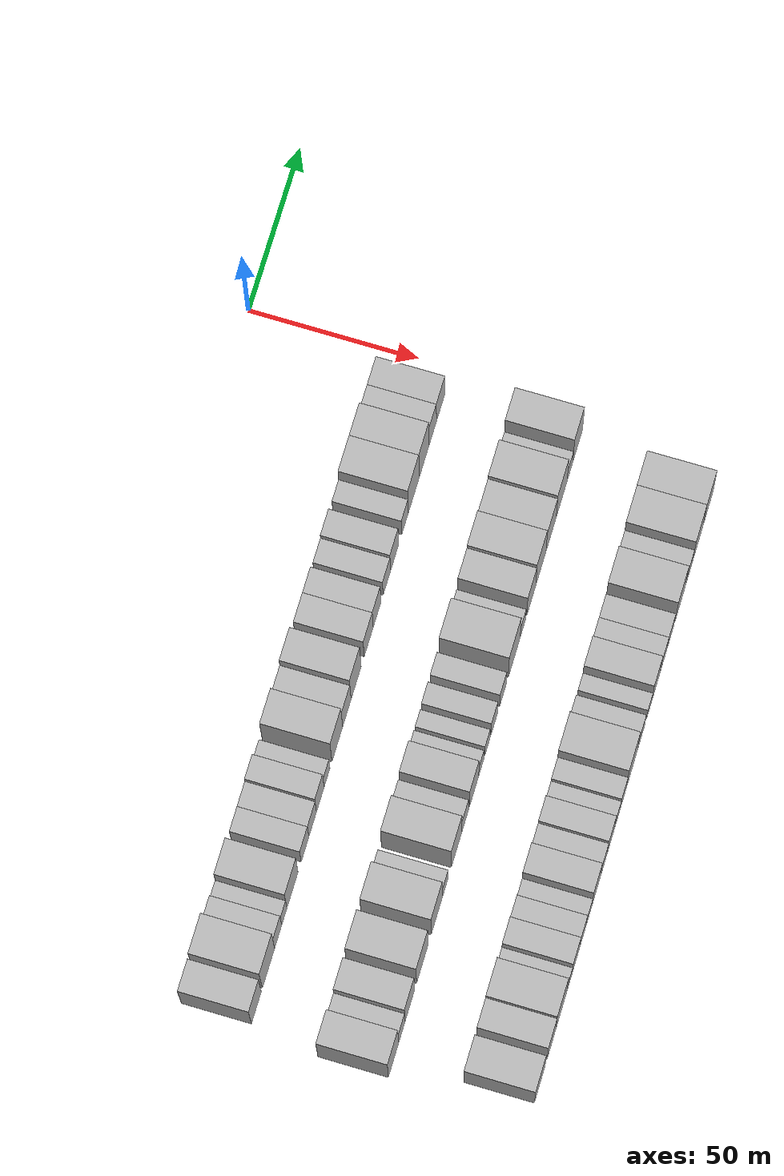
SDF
<sdf version="1.6">
 <world name="default">
  <model name="building_23">
   <static>1</static>
   <pose>50.0000 -189.3525 0 0.000000 0.000000 0.000000</pose>
   <link name="link">
    <pose>0 0 10.50 0 0 0</pose>
    <collision name="collision"><geometry><box><size>20.0000 9.1908 21.0000</size></box></geometry></collision>
    <visual name="visual">
     <cast_shadows>0</cast_shadows>
     <geometry><box><size>20.0000 9.1908 21.0000</size></box></geometry>
     <material>
      <script>
       <uri>model://HANNAS_wall/materials/scripts</uri>
       <uri>model://HANNAS_wall/materials/textures</uri>
       <name>vrc/HANNAS_wall</name>
      </script>
     </material>
    </visual>
   </link>
  </model>
  <model name="building_24">
   <static>1</static>
   <pose>50.0000 -178.0189 0 0.000000 0.000000 0.000000</pose>
   <link name="link">
    <pose>0 0 12.00 0 0 0</pose>
    <collision name="collision"><geometry><box><size>20.0000 11.4764 24.0000</size></box></geometry></collision>
    <visual name="visual">
     <cast_shadows>0</cast_shadows>
     <geometry><box><size>20.0000 11.4764 24.0000</size></box></geometry>
     <material>
      <script>
       <uri>model://HANNAS_wall/materials/scripts</uri>
       <uri>model://HANNAS_wall/materials/textures</uri>
       <name>vrc/HANNAS_wall</name>
      </script>
     </material>
    </visual>
   </link>
  </model>
  <model name="building_25">
   <static>1</static>
   <pose>50.0000 -168.9324 0 0.000000 0.000000 0.000000</pose>
   <link name="link">
    <pose>0 0 7.50 0 0 0</pose>
    <collision name="collision"><geometry><box><size>20.0000 6.6967 15.0000</size></box></geometry></collision>
    <visual name="visual">
     <cast_shadows>0</cast_shadows>
     <geometry><box><size>20.0000 6.6967 15.0000</size></box></geometry>
     <material>
      <script>
       <uri>model://HANNAS_wall/materials/scripts</uri>
       <uri>model://HANNAS_wall/materials/textures</uri>
       <name>vrc/HANNAS_wall</name>
      </script>
     </material>
    </visual>
   </link>
  </model>
  <model name="building_26">
   <static>1</static>
   <pose>50.0000 -163.1304 0 0.000000 0.000000 0.000000</pose>
   <link name="link">
    <pose>0 0 6.00 0 0 0</pose>
    <collision name="collision"><geometry><box><size>20.0000 4.9074 12.0000</size></box></geometry></collision>
    <visual name="visual">
     <cast_shadows>0</cast_shadows>
     <geometry><box><size>20.0000 4.9074 12.0000</size></box></geometry>
     <material>
      <script>
       <uri>model://HANNAS_wall/materials/scripts</uri>
       <uri>model://HANNAS_wall/materials/textures</uri>
       <name>vrc/HANNAS_wall</name>
      </script>
     </material>
    </visual>
   </link>
  </model>
  <model name="building_27">
   <static>1</static>
   <pose>50.0000 -155.4353 0 0.000000 0.000000 0.000000</pose>
   <link name="link">
    <pose>0 0 10.50 0 0 0</pose>
    <collision name="collision"><geometry><box><size>20.0000 10.4826 21.0000</size></box></geometry></collision>
    <visual name="visual">
     <cast_shadows>0</cast_shadows>
     <geometry><box><size>20.0000 10.4826 21.0000</size></box></geometry>
     <material>
      <script>
       <uri>model://HANNAS_wall/materials/scripts</uri>
       <uri>model://HANNAS_wall/materials/textures</uri>
       <name>vrc/HANNAS_wall</name>
      </script>
     </material>
    </visual>
   </link>
  </model>
  <model name="building_28">
   <static>1</static>
   <pose>50.0000 -143.5579 0 0.000000 0.000000 0.000000</pose>
   <link name="link">
    <pose>0 0 7.50 0 0 0</pose>
    <collision name="collision"><geometry><box><size>20.0000 7.2723 15.0000</size></box></geometry></collision>
    <visual name="visual">
     <cast_shadows>0</cast_shadows>
     <geometry><box><size>20.0000 7.2723 15.0000</size></box></geometry>
     <material>
      <script>
       <uri>model://HANNAS_wall/materials/scripts</uri>
       <uri>model://HANNAS_wall/materials/textures</uri>
       <name>vrc/HANNAS_wall</name>
      </script>
     </material>
    </visual>
   </link>
  </model>
  <model name="building_29">
   <static>1</static>
   <pose>50.0000 -136.2918 0 0.000000 0.000000 0.000000</pose>
   <link name="link">
    <pose>0 0 7.50 0 0 0</pose>
    <collision name="collision"><geometry><box><size>20.0000 7.2600 15.0000</size></box></geometry></collision>
    <visual name="visual">
     <cast_shadows>0</cast_shadows>
     <geometry><box><size>20.0000 7.2600 15.0000</size></box></geometry>
     <material>
      <script>
       <uri>model://HANNAS_wall/materials/scripts</uri>
       <uri>model://HANNAS_wall/materials/textures</uri>
       <name>vrc/HANNAS_wall</name>
      </script>
     </material>
    </visual>
   </link>
  </model>
  <model name="building_30">
   <static>1</static>
   <pose>50.0000 -129.0515 0 0.000000 0.000000 0.000000</pose>
   <link name="link">
    <pose>0 0 9.00 0 0 0</pose>
    <collision name="collision"><geometry><box><size>20.0000 7.2206 18.0000</size></box></geometry></collision>
    <visual name="visual">
     <cast_shadows>0</cast_shadows>
     <geometry><box><size>20.0000 7.2206 18.0000</size></box></geometry>
     <material>
      <script>
       <uri>model://HANNAS_wall/materials/scripts</uri>
       <uri>model://HANNAS_wall/materials/textures</uri>
       <name>vrc/HANNAS_wall</name>
      </script>
     </material>
    </visual>
   </link>
  </model>
  <model name="building_31">
   <static>1</static>
   <pose>50.0000 -122.6637 0 0.000000 0.000000 0.000000</pose>
   <link name="link">
    <pose>0 0 6.00 0 0 0</pose>
    <collision name="collision"><geometry><box><size>20.0000 5.5550 12.0000</size></box></geometry></collision>
    <visual name="visual">
     <cast_shadows>0</cast_shadows>
     <geometry><box><size>20.0000 5.5550 12.0000</size></box></geometry>
     <material>
      <script>
       <uri>model://HANNAS_wall/materials/scripts</uri>
       <uri>model://HANNAS_wall/materials/textures</uri>
       <name>vrc/HANNAS_wall</name>
      </script>
     </material>
    </visual>
   </link>
  </model>
  <model name="building_32">
   <static>1</static>
   <pose>50.0000 -112.7731 0 0.000000 0.000000 0.000000</pose>
   <link name="link">
    <pose>0 0 12.00 0 0 0</pose>
    <collision name="collision"><geometry><box><size>20.0000 10.2260 24.0000</size></box></geometry></collision>
    <visual name="visual">
     <cast_shadows>0</cast_shadows>
     <geometry><box><size>20.0000 10.2260 24.0000</size></box></geometry>
     <material>
      <script>
       <uri>model://HANNAS_wall/materials/scripts</uri>
       <uri>model://HANNAS_wall/materials/textures</uri>
       <name>vrc/HANNAS_wall</name>
      </script>
     </material>
    </visual>
   </link>
  </model>
  <model name="building_33">
   <static>1</static>
   <pose>50.0000 -103.6081 0 0.000000 0.000000 0.000000</pose>
   <link name="link">
    <pose>0 0 9.00 0 0 0</pose>
    <collision name="collision"><geometry><box><size>20.0000 8.1040 18.0000</size></box></geometry></collision>
    <visual name="visual">
     <cast_shadows>0</cast_shadows>
     <geometry><box><size>20.0000 8.1040 18.0000</size></box></geometry>
     <material>
      <script>
       <uri>model://HANNAS_wall/materials/scripts</uri>
       <uri>model://HANNAS_wall/materials/textures</uri>
       <name>vrc/HANNAS_wall</name>
      </script>
     </material>
    </visual>
   </link>
  </model>
  <model name="building_34">
   <static>1</static>
   <pose>50.0000 -94.7044 0 0.000000 0.000000 0.000000</pose>
   <link name="link">
    <pose>0 0 12.00 0 0 0</pose>
    <collision name="collision"><geometry><box><size>20.0000 9.7034 24.0000</size></box></geometry></collision>
    <visual name="visual">
     <cast_shadows>0</cast_shadows>
     <geometry><box><size>20.0000 9.7034 24.0000</size></box></geometry>
     <material>
      <script>
       <uri>model://HANNAS_wall/materials/scripts</uri>
       <uri>model://HANNAS_wall/materials/textures</uri>
       <name>vrc/HANNAS_wall</name>
      </script>
     </material>
    </visual>
   </link>
  </model>
  <model name="building_35">
   <static>1</static>
   <pose>50.0000 -82.5195 0 0.000000 0.000000 0.000000</pose>
   <link name="link">
    <pose>0 0 9.00 0 0 0</pose>
    <collision name="collision"><geometry><box><size>20.0000 8.6664 18.0000</size></box></geometry></collision>
    <visual name="visual">
     <cast_shadows>0</cast_shadows>
     <geometry><box><size>20.0000 8.6664 18.0000</size></box></geometry>
     <material>
      <script>
       <uri>model://HANNAS_wall/materials/scripts</uri>
       <uri>model://HANNAS_wall/materials/textures</uri>
       <name>vrc/HANNAS_wall</name>
      </script>
     </material>
    </visual>
   </link>
  </model>
  <model name="building_36">
   <static>1</static>
   <pose>50.0000 -74.3905 0 0.000000 0.000000 0.000000</pose>
   <link name="link">
    <pose>0 0 9.00 0 0 0</pose>
    <collision name="collision"><geometry><box><size>20.0000 7.5917 18.0000</size></box></geometry></collision>
    <visual name="visual">
     <cast_shadows>0</cast_shadows>
     <geometry><box><size>20.0000 7.5917 18.0000</size></box></geometry>
     <material>
      <script>
       <uri>model://HANNAS_wall/materials/scripts</uri>
       <uri>model://HANNAS_wall/materials/textures</uri>
       <name>vrc/HANNAS_wall</name>
      </script>
     </material>
    </visual>
   </link>
  </model>
  <model name="building_37">
   <static>1</static>
   <pose>50.0000 -64.9532 0 0.000000 0.000000 0.000000</pose>
   <link name="link">
    <pose>0 0 7.50 0 0 0</pose>
    <collision name="collision"><geometry><box><size>20.0000 7.2829 15.0000</size></box></geometry></collision>
    <visual name="visual">
     <cast_shadows>0</cast_shadows>
     <geometry><box><size>20.0000 7.2829 15.0000</size></box></geometry>
     <material>
      <script>
       <uri>model://HANNAS_wall/materials/scripts</uri>
       <uri>model://HANNAS_wall/materials/textures</uri>
       <name>vrc/HANNAS_wall</name>
      </script>
     </material>
    </visual>
   </link>
  </model>
  <model name="building_38">
   <static>1</static>
   <pose>50.0000 -57.3592 0 0.000000 0.000000 0.000000</pose>
   <link name="link">
    <pose>0 0 9.00 0 0 0</pose>
    <collision name="collision"><geometry><box><size>20.0000 7.9051 18.0000</size></box></geometry></collision>
    <visual name="visual">
     <cast_shadows>0</cast_shadows>
     <geometry><box><size>20.0000 7.9051 18.0000</size></box></geometry>
     <material>
      <script>
       <uri>model://HANNAS_wall/materials/scripts</uri>
       <uri>model://HANNAS_wall/materials/textures</uri>
       <name>vrc/HANNAS_wall</name>
      </script>
     </material>
    </visual>
   </link>
  </model>
  <model name="building_39">
   <static>1</static>
   <pose>50.0000 -47.1636 0 0.000000 0.000000 0.000000</pose>
   <link name="link">
    <pose>0 0 7.50 0 0 0</pose>
    <collision name="collision"><geometry><box><size>20.0000 6.4860 15.0000</size></box></geometry></collision>
    <visual name="visual">
     <cast_shadows>0</cast_shadows>
     <geometry><box><size>20.0000 6.4860 15.0000</size></box></geometry>
     <material>
      <script>
       <uri>model://HANNAS_wall/materials/scripts</uri>
       <uri>model://HANNAS_wall/materials/textures</uri>
       <name>vrc/HANNAS_wall</name>
      </script>
     </material>
    </visual>
   </link>
  </model>
  <model name="building_40">
   <static>1</static>
   <pose>50.0000 -38.5494 0 0.000000 0.000000 0.000000</pose>
   <link name="link">
    <pose>0 0 12.00 0 0 0</pose>
    <collision name="collision"><geometry><box><size>20.0000 10.7425 24.0000</size></box></geometry></collision>
    <visual name="visual">
     <cast_shadows>0</cast_shadows>
     <geometry><box><size>20.0000 10.7425 24.0000</size></box></geometry>
     <material>
      <script>
       <uri>model://HANNAS_wall/materials/scripts</uri>
       <uri>model://HANNAS_wall/materials/textures</uri>
       <name>vrc/HANNAS_wall</name>
      </script>
     </material>
    </visual>
   </link>
  </model>
  <model name="building_41">
   <static>1</static>
   <pose>50.0000 -28.3205 0 0.000000 0.000000 0.000000</pose>
   <link name="link">
    <pose>0 0 12.00 0 0 0</pose>
    <collision name="collision"><geometry><box><size>20.0000 9.7152 24.0000</size></box></geometry></collision>
    <visual name="visual">
     <cast_shadows>0</cast_shadows>
     <geometry><box><size>20.0000 9.7152 24.0000</size></box></geometry>
     <material>
      <script>
       <uri>model://HANNAS_wall/materials/scripts</uri>
       <uri>model://HANNAS_wall/materials/textures</uri>
       <name>vrc/HANNAS_wall</name>
      </script>
     </material>
    </visual>
   </link>
  </model>
  <model name="building_42">
   <static>1</static>
   <pose>50.0000 -19.8484 0 0.000000 0.000000 0.000000</pose>
   <link name="link">
    <pose>0 0 9.00 0 0 0</pose>
    <collision name="collision"><geometry><box><size>20.0000 7.2290 18.0000</size></box></geometry></collision>
    <visual name="visual">
     <cast_shadows>0</cast_shadows>
     <geometry><box><size>20.0000 7.2290 18.0000</size></box></geometry>
     <material>
      <script>
       <uri>model://HANNAS_wall/materials/scripts</uri>
       <uri>model://HANNAS_wall/materials/textures</uri>
       <name>vrc/HANNAS_wall</name>
      </script>
     </material>
    </visual>
   </link>
  </model>
  <model name="building_43">
   <static>1</static>
   <pose>50.0000 -12.0045 0 0.000000 0.000000 0.000000</pose>
   <link name="link">
    <pose>0 0 9.00 0 0 0</pose>
    <collision name="collision"><geometry><box><size>20.0000 8.4589 18.0000</size></box></geometry></collision>
    <visual name="visual">
     <cast_shadows>0</cast_shadows>
     <geometry><box><size>20.0000 8.4589 18.0000</size></box></geometry>
     <material>
      <script>
       <uri>model://HANNAS_wall/materials/scripts</uri>
       <uri>model://HANNAS_wall/materials/textures</uri>
       <name>vrc/HANNAS_wall</name>
      </script>
     </material>
    </visual>
   </link>
  </model>
  <model name="building_109">
   <static>1</static>
   <pose>90.0000 -192.5833 0 0.000000 0.000000 0.000000</pose>
   <link name="link">
    <pose>0 0 12.00 0 0 0</pose>
    <collision name="collision"><geometry><box><size>20.0000 9.7131 24.0000</size></box></geometry></collision>
    <visual name="visual">
     <cast_shadows>0</cast_shadows>
     <geometry><box><size>20.0000 9.7131 24.0000</size></box></geometry>
     <material>
      <script>
       <uri>model://HANNAS_wall/materials/scripts</uri>
       <uri>model://HANNAS_wall/materials/textures</uri>
       <name>vrc/HANNAS_wall</name>
      </script>
     </material>
    </visual>
   </link>
  </model>
  <model name="building_110">
   <static>1</static>
   <pose>90.0000 -184.6621 0 0.000000 0.000000 0.000000</pose>
   <link name="link">
    <pose>0 0 7.50 0 0 0</pose>
    <collision name="collision"><geometry><box><size>20.0000 6.1293 15.0000</size></box></geometry></collision>
    <visual name="visual">
     <cast_shadows>0</cast_shadows>
     <geometry><box><size>20.0000 6.1293 15.0000</size></box></geometry>
     <material>
      <script>
       <uri>model://HANNAS_wall/materials/scripts</uri>
       <uri>model://HANNAS_wall/materials/textures</uri>
       <name>vrc/HANNAS_wall</name>
      </script>
     </material>
    </visual>
   </link>
  </model>
  <model name="building_111">
   <static>1</static>
   <pose>90.0000 -177.0622 0 0.000000 0.000000 0.000000</pose>
   <link name="link">
    <pose>0 0 10.50 0 0 0</pose>
    <collision name="collision"><geometry><box><size>20.0000 9.0704 21.0000</size></box></geometry></collision>
    <visual name="visual">
     <cast_shadows>0</cast_shadows>
     <geometry><box><size>20.0000 9.0704 21.0000</size></box></geometry>
     <material>
      <script>
       <uri>model://HANNAS_wall/materials/scripts</uri>
       <uri>model://HANNAS_wall/materials/textures</uri>
       <name>vrc/HANNAS_wall</name>
      </script>
     </material>
    </visual>
   </link>
  </model>
  <model name="building_112">
   <static>1</static>
   <pose>90.0000 -165.0106 0 0.000000 0.000000 0.000000</pose>
   <link name="link">
    <pose>0 0 12.00 0 0 0</pose>
    <collision name="collision"><geometry><box><size>20.0000 11.0329 24.0000</size></box></geometry></collision>
    <visual name="visual">
     <cast_shadows>0</cast_shadows>
     <geometry><box><size>20.0000 11.0329 24.0000</size></box></geometry>
     <material>
      <script>
       <uri>model://HANNAS_wall/materials/scripts</uri>
       <uri>model://HANNAS_wall/materials/textures</uri>
       <name>vrc/HANNAS_wall</name>
      </script>
     </material>
    </visual>
   </link>
  </model>
  <model name="building_113">
   <static>1</static>
   <pose>90.0000 -151.1093 0 0.000000 0.000000 0.000000</pose>
   <link name="link">
    <pose>0 0 12.00 0 0 0</pose>
    <collision name="collision"><geometry><box><size>20.0000 10.7696 24.0000</size></box></geometry></collision>
    <visual name="visual">
     <cast_shadows>0</cast_shadows>
     <geometry><box><size>20.0000 10.7696 24.0000</size></box></geometry>
     <material>
      <script>
       <uri>model://HANNAS_wall/materials/scripts</uri>
       <uri>model://HANNAS_wall/materials/textures</uri>
       <name>vrc/HANNAS_wall</name>
      </script>
     </material>
    </visual>
   </link>
  </model>
  <model name="building_114">
   <static>1</static>
   <pose>90.0000 -142.8752 0 0.000000 0.000000 0.000000</pose>
   <link name="link">
    <pose>0 0 6.00 0 0 0</pose>
    <collision name="collision"><geometry><box><size>20.0000 5.6986 12.0000</size></box></geometry></collision>
    <visual name="visual">
     <cast_shadows>0</cast_shadows>
     <geometry><box><size>20.0000 5.6986 12.0000</size></box></geometry>
     <material>
      <script>
       <uri>model://HANNAS_wall/materials/scripts</uri>
       <uri>model://HANNAS_wall/materials/textures</uri>
       <name>vrc/HANNAS_wall</name>
      </script>
     </material>
    </visual>
   </link>
  </model>
  <model name="building_115">
   <static>1</static>
   <pose>90.0000 -131.9072 0 0.000000 0.000000 0.000000</pose>
   <link name="link">
    <pose>0 0 12.00 0 0 0</pose>
    <collision name="collision"><geometry><box><size>20.0000 10.2374 24.0000</size></box></geometry></collision>
    <visual name="visual">
     <cast_shadows>0</cast_shadows>
     <geometry><box><size>20.0000 10.2374 24.0000</size></box></geometry>
     <material>
      <script>
       <uri>model://HANNAS_wall/materials/scripts</uri>
       <uri>model://HANNAS_wall/materials/textures</uri>
       <name>vrc/HANNAS_wall</name>
      </script>
     </material>
    </visual>
   </link>
  </model>
  <model name="building_116">
   <static>1</static>
   <pose>90.0000 -123.5712 0 0.000000 0.000000 0.000000</pose>
   <link name="link">
    <pose>0 0 7.50 0 0 0</pose>
    <collision name="collision"><geometry><box><size>20.0000 6.4345 15.0000</size></box></geometry></collision>
    <visual name="visual">
     <cast_shadows>0</cast_shadows>
     <geometry><box><size>20.0000 6.4345 15.0000</size></box></geometry>
     <material>
      <script>
       <uri>model://HANNAS_wall/materials/scripts</uri>
       <uri>model://HANNAS_wall/materials/textures</uri>
       <name>vrc/HANNAS_wall</name>
      </script>
     </material>
    </visual>
   </link>
  </model>
  <model name="building_117">
   <static>1</static>
   <pose>90.0000 -114.8360 0 0.000000 0.000000 0.000000</pose>
   <link name="link">
    <pose>0 0 10.50 0 0 0</pose>
    <collision name="collision"><geometry><box><size>20.0000 9.0360 21.0000</size></box></geometry></collision>
    <visual name="visual">
     <cast_shadows>0</cast_shadows>
     <geometry><box><size>20.0000 9.0360 21.0000</size></box></geometry>
     <material>
      <script>
       <uri>model://HANNAS_wall/materials/scripts</uri>
       <uri>model://HANNAS_wall/materials/textures</uri>
       <name>vrc/HANNAS_wall</name>
      </script>
     </material>
    </visual>
   </link>
  </model>
  <model name="building_118">
   <static>1</static>
   <pose>90.0000 -107.8301 0 0.000000 0.000000 0.000000</pose>
   <link name="link">
    <pose>0 0 6.00 0 0 0</pose>
    <collision name="collision"><geometry><box><size>20.0000 4.9759 12.0000</size></box></geometry></collision>
    <visual name="visual">
     <cast_shadows>0</cast_shadows>
     <geometry><box><size>20.0000 4.9759 12.0000</size></box></geometry>
     <material>
      <script>
       <uri>model://HANNAS_wall/materials/scripts</uri>
       <uri>model://HANNAS_wall/materials/textures</uri>
       <name>vrc/HANNAS_wall</name>
      </script>
     </material>
    </visual>
   </link>
  </model>
  <model name="building_119">
   <static>1</static>
   <pose>90.0000 -101.7941 0 0.000000 0.000000 0.000000</pose>
   <link name="link">
    <pose>0 0 6.00 0 0 0</pose>
    <collision name="collision"><geometry><box><size>20.0000 5.0960 12.0000</size></box></geometry></collision>
    <visual name="visual">
     <cast_shadows>0</cast_shadows>
     <geometry><box><size>20.0000 5.0960 12.0000</size></box></geometry>
     <material>
      <script>
       <uri>model://HANNAS_wall/materials/scripts</uri>
       <uri>model://HANNAS_wall/materials/textures</uri>
       <name>vrc/HANNAS_wall</name>
      </script>
     </material>
    </visual>
   </link>
  </model>
  <model name="building_120">
   <static>1</static>
   <pose>90.0000 -95.0646 0 0.000000 0.000000 0.000000</pose>
   <link name="link">
    <pose>0 0 7.50 0 0 0</pose>
    <collision name="collision"><geometry><box><size>20.0000 6.3630 15.0000</size></box></geometry></collision>
    <visual name="visual">
     <cast_shadows>0</cast_shadows>
     <geometry><box><size>20.0000 6.3630 15.0000</size></box></geometry>
     <material>
      <script>
       <uri>model://HANNAS_wall/materials/scripts</uri>
       <uri>model://HANNAS_wall/materials/textures</uri>
       <name>vrc/HANNAS_wall</name>
      </script>
     </material>
    </visual>
   </link>
  </model>
  <model name="building_121">
   <static>1</static>
   <pose>90.0000 -86.5273 0 0.000000 0.000000 0.000000</pose>
   <link name="link">
    <pose>0 0 7.50 0 0 0</pose>
    <collision name="collision"><geometry><box><size>20.0000 6.7117 15.0000</size></box></geometry></collision>
    <visual name="visual">
     <cast_shadows>0</cast_shadows>
     <geometry><box><size>20.0000 6.7117 15.0000</size></box></geometry>
     <material>
      <script>
       <uri>model://HANNAS_wall/materials/scripts</uri>
       <uri>model://HANNAS_wall/materials/textures</uri>
       <name>vrc/HANNAS_wall</name>
      </script>
     </material>
    </visual>
   </link>
  </model>
  <model name="building_122">
   <static>1</static>
   <pose>90.0000 -75.3050 0 0.000000 0.000000 0.000000</pose>
   <link name="link">
    <pose>0 0 12.00 0 0 0</pose>
    <collision name="collision"><geometry><box><size>20.0000 11.7327 24.0000</size></box></geometry></collision>
    <visual name="visual">
     <cast_shadows>0</cast_shadows>
     <geometry><box><size>20.0000 11.7327 24.0000</size></box></geometry>
     <material>
      <script>
       <uri>model://HANNAS_wall/materials/scripts</uri>
       <uri>model://HANNAS_wall/materials/textures</uri>
       <name>vrc/HANNAS_wall</name>
      </script>
     </material>
    </visual>
   </link>
  </model>
  <model name="building_123">
   <static>1</static>
   <pose>90.0000 -66.6908 0 0.000000 0.000000 0.000000</pose>
   <link name="link">
    <pose>0 0 6.00 0 0 0</pose>
    <collision name="collision"><geometry><box><size>20.0000 5.4957 12.0000</size></box></geometry></collision>
    <visual name="visual">
     <cast_shadows>0</cast_shadows>
     <geometry><box><size>20.0000 5.4957 12.0000</size></box></geometry>
     <material>
      <script>
       <uri>model://HANNAS_wall/materials/scripts</uri>
       <uri>model://HANNAS_wall/materials/textures</uri>
       <name>vrc/HANNAS_wall</name>
      </script>
     </material>
    </visual>
   </link>
  </model>
  <model name="building_124">
   <static>1</static>
   <pose>90.0000 -58.4732 0 0.000000 0.000000 0.000000</pose>
   <link name="link">
    <pose>0 0 10.50 0 0 0</pose>
    <collision name="collision"><geometry><box><size>20.0000 8.9394 21.0000</size></box></geometry></collision>
    <visual name="visual">
     <cast_shadows>0</cast_shadows>
     <geometry><box><size>20.0000 8.9394 21.0000</size></box></geometry>
     <material>
      <script>
       <uri>model://HANNAS_wall/materials/scripts</uri>
       <uri>model://HANNAS_wall/materials/textures</uri>
       <name>vrc/HANNAS_wall</name>
      </script>
     </material>
    </visual>
   </link>
  </model>
  <model name="building_125">
   <static>1</static>
   <pose>90.0000 -48.8647 0 0.000000 0.000000 0.000000</pose>
   <link name="link">
    <pose>0 0 12.00 0 0 0</pose>
    <collision name="collision"><geometry><box><size>20.0000 10.2776 24.0000</size></box></geometry></collision>
    <visual name="visual">
     <cast_shadows>0</cast_shadows>
     <geometry><box><size>20.0000 10.2776 24.0000</size></box></geometry>
     <material>
      <script>
       <uri>model://HANNAS_wall/materials/scripts</uri>
       <uri>model://HANNAS_wall/materials/textures</uri>
       <name>vrc/HANNAS_wall</name>
      </script>
     </material>
    </visual>
   </link>
  </model>
  <model name="building_126">
   <static>1</static>
   <pose>90.0000 -38.6143 0 0.000000 0.000000 0.000000</pose>
   <link name="link">
    <pose>0 0 10.50 0 0 0</pose>
    <collision name="collision"><geometry><box><size>20.0000 10.2233 21.0000</size></box></geometry></collision>
    <visual name="visual">
     <cast_shadows>0</cast_shadows>
     <geometry><box><size>20.0000 10.2233 21.0000</size></box></geometry>
     <material>
      <script>
       <uri>model://HANNAS_wall/materials/scripts</uri>
       <uri>model://HANNAS_wall/materials/textures</uri>
       <name>vrc/HANNAS_wall</name>
      </script>
     </material>
    </visual>
   </link>
  </model>
  <model name="building_127">
   <static>1</static>
   <pose>90.0000 -28.0906 0 0.000000 0.000000 0.000000</pose>
   <link name="link">
    <pose>0 0 12.00 0 0 0</pose>
    <collision name="collision"><geometry><box><size>20.0000 10.8241 24.0000</size></box></geometry></collision>
    <visual name="visual">
     <cast_shadows>0</cast_shadows>
     <geometry><box><size>20.0000 10.8241 24.0000</size></box></geometry>
     <material>
      <script>
       <uri>model://HANNAS_wall/materials/scripts</uri>
       <uri>model://HANNAS_wall/materials/textures</uri>
       <name>vrc/HANNAS_wall</name>
      </script>
     </material>
    </visual>
   </link>
  </model>
  <model name="building_128">
   <static>1</static>
   <pose>90.0000 -19.7956 0 0.000000 0.000000 0.000000</pose>
   <link name="link">
    <pose>0 0 6.00 0 0 0</pose>
    <collision name="collision"><geometry><box><size>20.0000 5.7658 12.0000</size></box></geometry></collision>
    <visual name="visual">
     <cast_shadows>0</cast_shadows>
     <geometry><box><size>20.0000 5.7658 12.0000</size></box></geometry>
     <material>
      <script>
       <uri>model://HANNAS_wall/materials/scripts</uri>
       <uri>model://HANNAS_wall/materials/textures</uri>
       <name>vrc/HANNAS_wall</name>
      </script>
     </material>
    </visual>
   </link>
  </model>
  <model name="building_129">
   <static>1</static>
   <pose>90.0000 -12.0088 0 0.000000 0.000000 0.000000</pose>
   <link name="link">
    <pose>0 0 12.00 0 0 0</pose>
    <collision name="collision"><geometry><box><size>20.0000 9.8079 24.0000</size></box></geometry></collision>
    <visual name="visual">
     <cast_shadows>0</cast_shadows>
     <geometry><box><size>20.0000 9.8079 24.0000</size></box></geometry>
     <material>
      <script>
       <uri>model://HANNAS_wall/materials/scripts</uri>
       <uri>model://HANNAS_wall/materials/textures</uri>
       <name>vrc/HANNAS_wall</name>
      </script>
     </material>
    </visual>
   </link>
  </model>
  <model name="building_184">
   <static>1</static>
   <pose>130.0000 -187.7295 0 0.000000 0.000000 0.000000</pose>
   <link name="link">
    <pose>0 0 10.50 0 0 0</pose>
    <collision name="collision"><geometry><box><size>20.0000 10.3457 21.0000</size></box></geometry></collision>
    <visual name="visual">
     <cast_shadows>0</cast_shadows>
     <geometry><box><size>20.0000 10.3457 21.0000</size></box></geometry>
     <material>
      <script>
       <uri>model://HANNAS_wall/materials/scripts</uri>
       <uri>model://HANNAS_wall/materials/textures</uri>
       <name>vrc/HANNAS_wall</name>
      </script>
     </material>
    </visual>
   </link>
  </model>
  <model name="building_185">
   <static>1</static>
   <pose>130.0000 -176.3350 0 0.000000 0.000000 0.000000</pose>
   <link name="link">
    <pose>0 0 10.50 0 0 0</pose>
    <collision name="collision"><geometry><box><size>20.0000 8.4432 21.0000</size></box></geometry></collision>
    <visual name="visual">
     <cast_shadows>0</cast_shadows>
     <geometry><box><size>20.0000 8.4432 21.0000</size></box></geometry>
     <material>
      <script>
       <uri>model://HANNAS_wall/materials/scripts</uri>
       <uri>model://HANNAS_wall/materials/textures</uri>
       <name>vrc/HANNAS_wall</name>
      </script>
     </material>
    </visual>
   </link>
  </model>
  <model name="building_186">
   <static>1</static>
   <pose>130.0000 -166.6670 0 0.000000 0.000000 0.000000</pose>
   <link name="link">
    <pose>0 0 12.00 0 0 0</pose>
    <collision name="collision"><geometry><box><size>20.0000 10.8928 24.0000</size></box></geometry></collision>
    <visual name="visual">
     <cast_shadows>0</cast_shadows>
     <geometry><box><size>20.0000 10.8928 24.0000</size></box></geometry>
     <material>
      <script>
       <uri>model://HANNAS_wall/materials/scripts</uri>
       <uri>model://HANNAS_wall/materials/textures</uri>
       <name>vrc/HANNAS_wall</name>
      </script>
     </material>
    </visual>
   </link>
  </model>
  <model name="building_187">
   <static>1</static>
   <pose>130.0000 -158.7367 0 0.000000 0.000000 0.000000</pose>
   <link name="link">
    <pose>0 0 6.00 0 0 0</pose>
    <collision name="collision"><geometry><box><size>20.0000 4.9677 12.0000</size></box></geometry></collision>
    <visual name="visual">
     <cast_shadows>0</cast_shadows>
     <geometry><box><size>20.0000 4.9677 12.0000</size></box></geometry>
     <material>
      <script>
       <uri>model://HANNAS_wall/materials/scripts</uri>
       <uri>model://HANNAS_wall/materials/textures</uri>
       <name>vrc/HANNAS_wall</name>
      </script>
     </material>
    </visual>
   </link>
  </model>
  <model name="building_188">
   <static>1</static>
   <pose>130.0000 -152.4223 0 0.000000 0.000000 0.000000</pose>
   <link name="link">
    <pose>0 0 9.00 0 0 0</pose>
    <collision name="collision"><geometry><box><size>20.0000 7.6611 18.0000</size></box></geometry></collision>
    <visual name="visual">
     <cast_shadows>0</cast_shadows>
     <geometry><box><size>20.0000 7.6611 18.0000</size></box></geometry>
     <material>
      <script>
       <uri>model://HANNAS_wall/materials/scripts</uri>
       <uri>model://HANNAS_wall/materials/textures</uri>
       <name>vrc/HANNAS_wall</name>
      </script>
     </material>
    </visual>
   </link>
  </model>
  <model name="building_189">
   <static>1</static>
   <pose>130.0000 -145.1981 0 0.000000 0.000000 0.000000</pose>
   <link name="link">
    <pose>0 0 7.50 0 0 0</pose>
    <collision name="collision"><geometry><box><size>20.0000 6.7874 15.0000</size></box></geometry></collision>
    <visual name="visual">
     <cast_shadows>0</cast_shadows>
     <geometry><box><size>20.0000 6.7874 15.0000</size></box></geometry>
     <material>
      <script>
       <uri>model://HANNAS_wall/materials/scripts</uri>
       <uri>model://HANNAS_wall/materials/textures</uri>
       <name>vrc/HANNAS_wall</name>
      </script>
     </material>
    </visual>
   </link>
  </model>
  <model name="building_190">
   <static>1</static>
   <pose>130.0000 -139.1541 0 0.000000 0.000000 0.000000</pose>
   <link name="link">
    <pose>0 0 6.00 0 0 0</pose>
    <collision name="collision"><geometry><box><size>20.0000 5.3006 12.0000</size></box></geometry></collision>
    <visual name="visual">
     <cast_shadows>0</cast_shadows>
     <geometry><box><size>20.0000 5.3006 12.0000</size></box></geometry>
     <material>
      <script>
       <uri>model://HANNAS_wall/materials/scripts</uri>
       <uri>model://HANNAS_wall/materials/textures</uri>
       <name>vrc/HANNAS_wall</name>
      </script>
     </material>
    </visual>
   </link>
  </model>
  <model name="building_191">
   <static>1</static>
   <pose>130.0000 -132.2243 0 0.000000 0.000000 0.000000</pose>
   <link name="link">
    <pose>0 0 10.50 0 0 0</pose>
    <collision name="collision"><geometry><box><size>20.0000 8.5589 21.0000</size></box></geometry></collision>
    <visual name="visual">
     <cast_shadows>0</cast_shadows>
     <geometry><box><size>20.0000 8.5589 21.0000</size></box></geometry>
     <material>
      <script>
       <uri>model://HANNAS_wall/materials/scripts</uri>
       <uri>model://HANNAS_wall/materials/textures</uri>
       <name>vrc/HANNAS_wall</name>
      </script>
     </material>
    </visual>
   </link>
  </model>
  <model name="building_192">
   <static>1</static>
   <pose>130.0000 -124.5344 0 0.000000 0.000000 0.000000</pose>
   <link name="link">
    <pose>0 0 7.50 0 0 0</pose>
    <collision name="collision"><geometry><box><size>20.0000 6.8209 15.0000</size></box></geometry></collision>
    <visual name="visual">
     <cast_shadows>0</cast_shadows>
     <geometry><box><size>20.0000 6.8209 15.0000</size></box></geometry>
     <material>
      <script>
       <uri>model://HANNAS_wall/materials/scripts</uri>
       <uri>model://HANNAS_wall/materials/textures</uri>
       <name>vrc/HANNAS_wall</name>
      </script>
     </material>
    </visual>
   </link>
  </model>
  <model name="building_193">
   <static>1</static>
   <pose>130.0000 -117.4496 0 0.000000 0.000000 0.000000</pose>
   <link name="link">
    <pose>0 0 9.00 0 0 0</pose>
    <collision name="collision"><geometry><box><size>20.0000 7.3488 18.0000</size></box></geometry></collision>
    <visual name="visual">
     <cast_shadows>0</cast_shadows>
     <geometry><box><size>20.0000 7.3488 18.0000</size></box></geometry>
     <material>
      <script>
       <uri>model://HANNAS_wall/materials/scripts</uri>
       <uri>model://HANNAS_wall/materials/textures</uri>
       <name>vrc/HANNAS_wall</name>
      </script>
     </material>
    </visual>
   </link>
  </model>
  <model name="building_194">
   <static>1</static>
   <pose>130.0000 -111.0525 0 0.000000 0.000000 0.000000</pose>
   <link name="link">
    <pose>0 0 6.00 0 0 0</pose>
    <collision name="collision"><geometry><box><size>20.0000 5.4453 12.0000</size></box></geometry></collision>
    <visual name="visual">
     <cast_shadows>0</cast_shadows>
     <geometry><box><size>20.0000 5.4453 12.0000</size></box></geometry>
     <material>
      <script>
       <uri>model://HANNAS_wall/materials/scripts</uri>
       <uri>model://HANNAS_wall/materials/textures</uri>
       <name>vrc/HANNAS_wall</name>
      </script>
     </material>
    </visual>
   </link>
  </model>
  <model name="building_195">
   <static>1</static>
   <pose>130.0000 -105.1910 0 0.000000 0.000000 0.000000</pose>
   <link name="link">
    <pose>0 0 7.50 0 0 0</pose>
    <collision name="collision"><geometry><box><size>20.0000 6.2777 15.0000</size></box></geometry></collision>
    <visual name="visual">
     <cast_shadows>0</cast_shadows>
     <geometry><box><size>20.0000 6.2777 15.0000</size></box></geometry>
     <material>
      <script>
       <uri>model://HANNAS_wall/materials/scripts</uri>
       <uri>model://HANNAS_wall/materials/textures</uri>
       <name>vrc/HANNAS_wall</name>
      </script>
     </material>
    </visual>
   </link>
  </model>
  <model name="building_196">
   <static>1</static>
   <pose>130.0000 -96.4208 0 0.000000 0.000000 0.000000</pose>
   <link name="link">
    <pose>0 0 12.00 0 0 0</pose>
    <collision name="collision"><geometry><box><size>20.0000 11.2627 24.0000</size></box></geometry></collision>
    <visual name="visual">
     <cast_shadows>0</cast_shadows>
     <geometry><box><size>20.0000 11.2627 24.0000</size></box></geometry>
     <material>
      <script>
       <uri>model://HANNAS_wall/materials/scripts</uri>
       <uri>model://HANNAS_wall/materials/textures</uri>
       <name>vrc/HANNAS_wall</name>
      </script>
     </material>
    </visual>
   </link>
  </model>
  <model name="building_197">
   <static>1</static>
   <pose>130.0000 -87.3247 0 0.000000 0.000000 0.000000</pose>
   <link name="link">
    <pose>0 0 7.50 0 0 0</pose>
    <collision name="collision"><geometry><box><size>20.0000 6.9295 15.0000</size></box></geometry></collision>
    <visual name="visual">
     <cast_shadows>0</cast_shadows>
     <geometry><box><size>20.0000 6.9295 15.0000</size></box></geometry>
     <material>
      <script>
       <uri>model://HANNAS_wall/materials/scripts</uri>
       <uri>model://HANNAS_wall/materials/textures</uri>
       <name>vrc/HANNAS_wall</name>
      </script>
     </material>
    </visual>
   </link>
  </model>
  <model name="building_198">
   <static>1</static>
   <pose>130.0000 -79.3357 0 0.000000 0.000000 0.000000</pose>
   <link name="link">
    <pose>0 0 6.00 0 0 0</pose>
    <collision name="collision"><geometry><box><size>20.0000 5.0485 12.0000</size></box></geometry></collision>
    <visual name="visual">
     <cast_shadows>0</cast_shadows>
     <geometry><box><size>20.0000 5.0485 12.0000</size></box></geometry>
     <material>
      <script>
       <uri>model://HANNAS_wall/materials/scripts</uri>
       <uri>model://HANNAS_wall/materials/textures</uri>
       <name>vrc/HANNAS_wall</name>
      </script>
     </material>
    </visual>
   </link>
  </model>
  <model name="building_199">
   <static>1</static>
   <pose>130.0000 -72.4221 0 0.000000 0.000000 0.000000</pose>
   <link name="link">
    <pose>0 0 10.50 0 0 0</pose>
    <collision name="collision"><geometry><box><size>20.0000 8.7786 21.0000</size></box></geometry></collision>
    <visual name="visual">
     <cast_shadows>0</cast_shadows>
     <geometry><box><size>20.0000 8.7786 21.0000</size></box></geometry>
     <material>
      <script>
       <uri>model://HANNAS_wall/materials/scripts</uri>
       <uri>model://HANNAS_wall/materials/textures</uri>
       <name>vrc/HANNAS_wall</name>
      </script>
     </material>
    </visual>
   </link>
  </model>
  <model name="building_200">
   <static>1</static>
   <pose>130.0000 -64.5650 0 0.000000 0.000000 0.000000</pose>
   <link name="link">
    <pose>0 0 7.50 0 0 0</pose>
    <collision name="collision"><geometry><box><size>20.0000 6.9357 15.0000</size></box></geometry></collision>
    <visual name="visual">
     <cast_shadows>0</cast_shadows>
     <geometry><box><size>20.0000 6.9357 15.0000</size></box></geometry>
     <material>
      <script>
       <uri>model://HANNAS_wall/materials/scripts</uri>
       <uri>model://HANNAS_wall/materials/textures</uri>
       <name>vrc/HANNAS_wall</name>
      </script>
     </material>
    </visual>
   </link>
  </model>
  <model name="building_201">
   <static>1</static>
   <pose>130.0000 -57.6427 0 0.000000 0.000000 0.000000</pose>
   <link name="link">
    <pose>0 0 7.50 0 0 0</pose>
    <collision name="collision"><geometry><box><size>20.0000 6.9087 15.0000</size></box></geometry></collision>
    <visual name="visual">
     <cast_shadows>0</cast_shadows>
     <geometry><box><size>20.0000 6.9087 15.0000</size></box></geometry>
     <material>
      <script>
       <uri>model://HANNAS_wall/materials/scripts</uri>
       <uri>model://HANNAS_wall/materials/textures</uri>
       <name>vrc/HANNAS_wall</name>
      </script>
     </material>
    </visual>
   </link>
  </model>
  <model name="building_202">
   <static>1</static>
   <pose>130.0000 -47.7763 0 0.000000 0.000000 0.000000</pose>
   <link name="link">
    <pose>0 0 12.00 0 0 0</pose>
    <collision name="collision"><geometry><box><size>20.0000 10.8241 24.0000</size></box></geometry></collision>
    <visual name="visual">
     <cast_shadows>0</cast_shadows>
     <geometry><box><size>20.0000 10.8241 24.0000</size></box></geometry>
     <material>
      <script>
       <uri>model://HANNAS_wall/materials/scripts</uri>
       <uri>model://HANNAS_wall/materials/textures</uri>
       <name>vrc/HANNAS_wall</name>
      </script>
     </material>
    </visual>
   </link>
  </model>
  <model name="building_203">
   <static>1</static>
   <pose>130.0000 -38.3566 0 0.000000 0.000000 0.000000</pose>
   <link name="link">
    <pose>0 0 7.50 0 0 0</pose>
    <collision name="collision"><geometry><box><size>20.0000 6.0152 15.0000</size></box></geometry></collision>
    <visual name="visual">
     <cast_shadows>0</cast_shadows>
     <geometry><box><size>20.0000 6.0152 15.0000</size></box></geometry>
     <material>
      <script>
       <uri>model://HANNAS_wall/materials/scripts</uri>
       <uri>model://HANNAS_wall/materials/textures</uri>
       <name>vrc/HANNAS_wall</name>
      </script>
     </material>
    </visual>
   </link>
  </model>
  <model name="building_204">
   <static>1</static>
   <pose>130.0000 -29.8300 0 0.000000 0.000000 0.000000</pose>
   <link name="link">
    <pose>0 0 12.00 0 0 0</pose>
    <collision name="collision"><geometry><box><size>20.0000 11.0380 24.0000</size></box></geometry></collision>
    <visual name="visual">
     <cast_shadows>0</cast_shadows>
     <geometry><box><size>20.0000 11.0380 24.0000</size></box></geometry>
     <material>
      <script>
       <uri>model://HANNAS_wall/materials/scripts</uri>
       <uri>model://HANNAS_wall/materials/textures</uri>
       <name>vrc/HANNAS_wall</name>
      </script>
     </material>
    </visual>
   </link>
  </model>
  <model name="building_205">
   <static>1</static>
   <pose>130.0000 -19.2347 0 0.000000 0.000000 0.000000</pose>
   <link name="link">
    <pose>0 0 12.00 0 0 0</pose>
    <collision name="collision"><geometry><box><size>20.0000 10.1525 24.0000</size></box></geometry></collision>
    <visual name="visual">
     <cast_shadows>0</cast_shadows>
     <geometry><box><size>20.0000 10.1525 24.0000</size></box></geometry>
     <material>
      <script>
       <uri>model://HANNAS_wall/materials/scripts</uri>
       <uri>model://HANNAS_wall/materials/textures</uri>
       <name>vrc/HANNAS_wall</name>
      </script>
     </material>
    </visual>
   </link>
  </model>
 </world>
</sdf>
